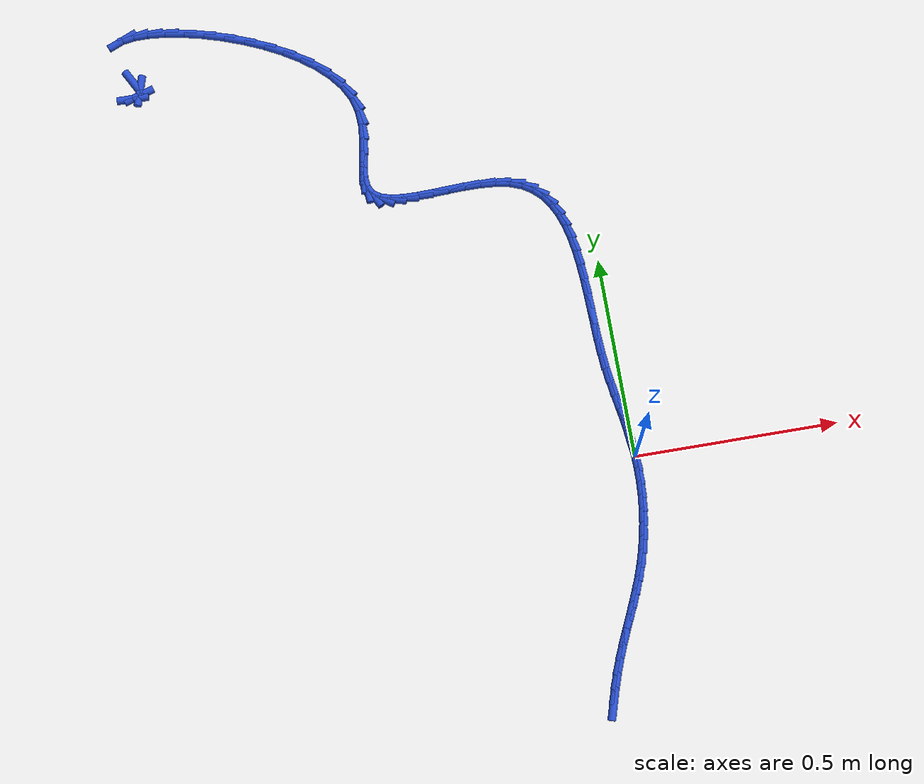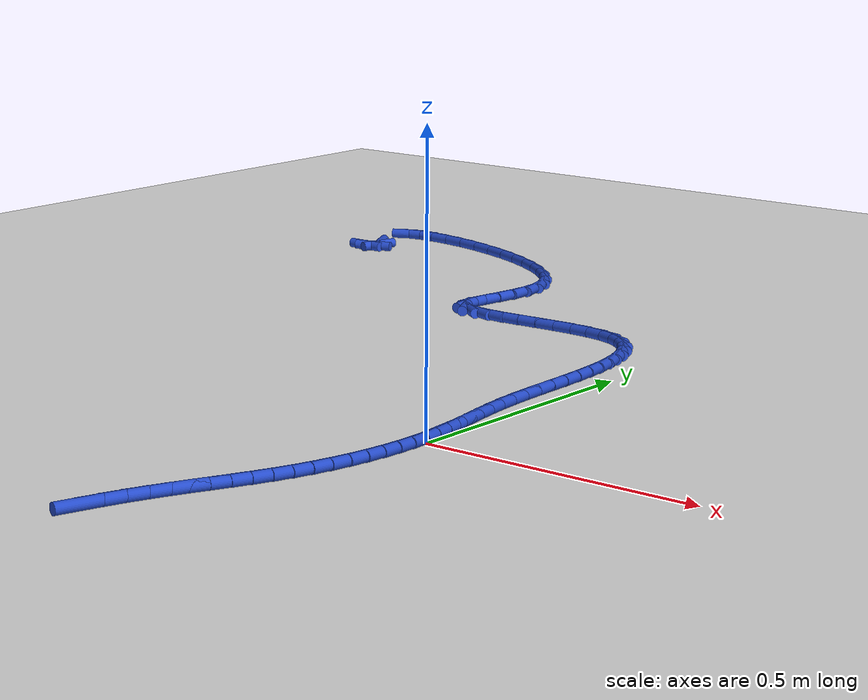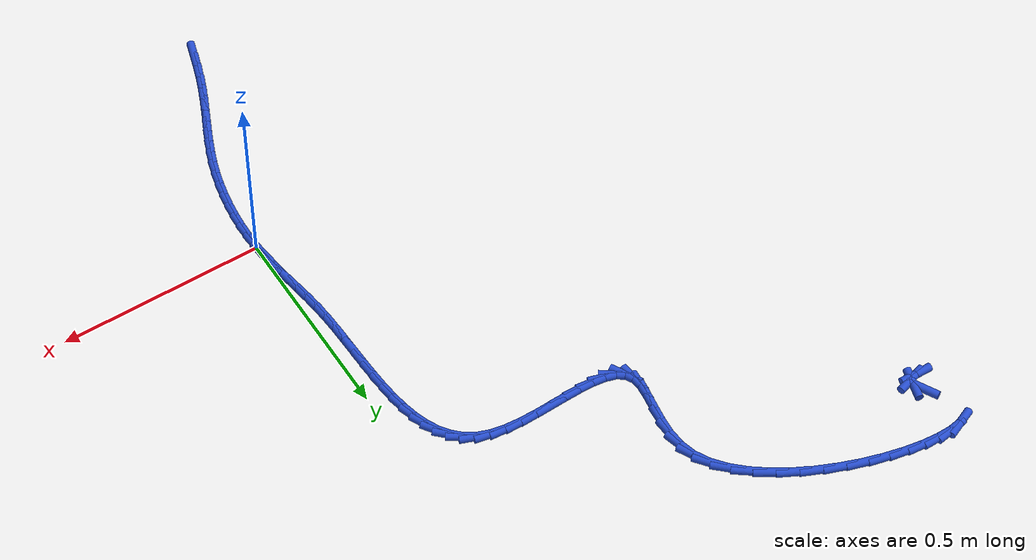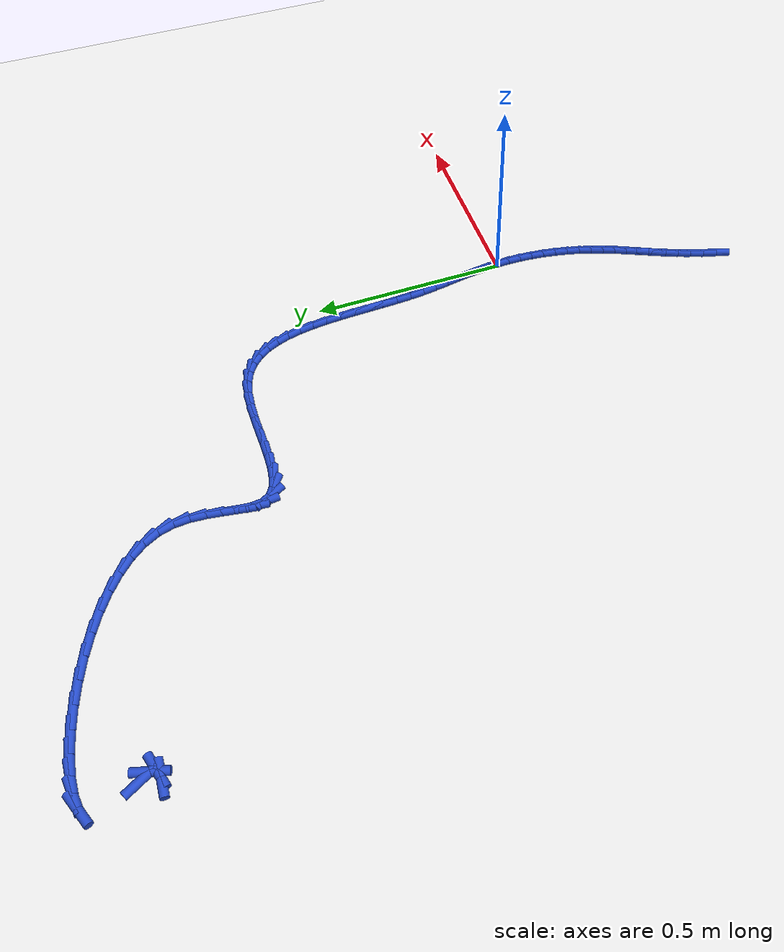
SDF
<sdf version="1.6">
 <world name="default">
  <model name="ground_plane">
   <static>1</static>
   <link name="link">
    <collision name="collision">
     <geometry><plane><normal>0 0 1</normal><size>100 100</size></plane></geometry>
     <surface><friction><ode><mu>100</mu><mu2>50</mu2></ode></friction></surface>
    </collision>
    <visual name="visual">
     <cast_shadows>0</cast_shadows>
     <geometry><plane><normal>0 0 1</normal><size>100 100</size></plane></geometry>
     <material>
      <script><uri>file://media/materials/scripts/gazebo.material</uri><name>Gazebo/WhiteGlow</name></script>
     </material>
    </visual>
   </link>
  </model>
  <model name="line">
   <link name="link_0">
    <pose>3.122502256758253e-17 0.0 0.01 0 1.57 -1.4923464075122743</pose>
    <collision name="collision">
     <geometry><cylinder><radius>0.01</radius><length>0.08</length></cylinder></geometry>
    </collision>
    <visual name="visual">
     <material>
      <script><name>Gazebo/Blue</name><uri>file://media/materials/scripts/gazebo.material</uri></script>
     </material>
     <geometry><cylinder><radius>0.01</radius><length>0.08</length></cylinder></geometry>
    </visual>
   </link>
   <link name="link_1">
    <pose>-0.0025242396400565912 0.03211041072144942 0.01 0 1.57 -1.4527249060750735</pose>
    <collision name="collision">
     <geometry><cylinder><radius>0.01</radius><length>0.08</length></cylinder></geometry>
    </collision>
    <visual name="visual">
     <material>
      <script><name>Gazebo/Blue</name><uri>file://media/materials/scripts/gazebo.material</uri></script>
     </material>
     <geometry><cylinder><radius>0.01</radius><length>0.08</length></cylinder></geometry>
    </visual>
   </link>
   <link name="link_2">
    <pose>-0.006291301379598806 0.06386695320340485 0.01 0 1.57 -1.425345209518804</pose>
    <collision name="collision">
     <geometry><cylinder><radius>0.01</radius><length>0.08</length></cylinder></geometry>
    </collision>
    <visual name="visual">
     <material>
      <script><name>Gazebo/Blue</name><uri>file://media/materials/scripts/gazebo.material</uri></script>
     </material>
     <geometry><cylinder><radius>0.01</radius><length>0.08</length></cylinder></geometry>
    </visual>
   </link>
   <link name="link_3">
    <pose>-0.010934447581198268 0.09556390062866021 0.01 0 1.57 -1.4108151127169857</pose>
    <collision name="collision">
     <geometry><cylinder><radius>0.01</radius><length>0.08</length></cylinder></geometry>
    </collision>
    <visual name="visual">
     <material>
      <script><name>Gazebo/Blue</name><uri>file://media/materials/scripts/gazebo.material</uri></script>
     </material>
     <geometry><cylinder><radius>0.01</radius><length>0.08</length></cylinder></geometry>
    </visual>
   </link>
   <link name="link_4">
    <pose>-0.016086940607426627 0.12749552618000934 0.01 0 1.57 -1.4090964437358047</pose>
    <collision name="collision">
     <geometry><cylinder><radius>0.01</radius><length>0.08</length></cylinder></geometry>
    </collision>
    <visual name="visual">
     <material>
      <script><name>Gazebo/Blue</name><uri>file://media/materials/scripts/gazebo.material</uri></script>
     </material>
     <geometry><cylinder><radius>0.01</radius><length>0.08</length></cylinder></geometry>
    </visual>
   </link>
   <link name="link_5">
    <pose>-0.021382042820855526 0.15995610304024607 0.01 0 1.57 -1.419603406813865</pose>
    <collision name="collision">
     <geometry><cylinder><radius>0.01</radius><length>0.08</length></cylinder></geometry>
    </collision>
    <visual name="visual">
     <material>
      <script><name>Gazebo/Blue</name><uri>file://media/materials/scripts/gazebo.material</uri></script>
     </material>
     <geometry><cylinder><radius>0.01</radius><length>0.08</length></cylinder></geometry>
    </visual>
   </link>
   <link name="link_6">
    <pose>-0.026453016584056632 0.19323990439216446 0.01 0 1.57 -1.4412943942337055</pose>
    <collision name="collision">
     <geometry><cylinder><radius>0.01</radius><length>0.08</length></cylinder></geometry>
    </collision>
    <visual name="visual">
     <material>
      <script><name>Gazebo/Blue</name><uri>file://media/materials/scripts/gazebo.material</uri></script>
     </material>
     <geometry><cylinder><radius>0.01</radius><length>0.08</length></cylinder></geometry>
    </visual>
   </link>
   <link name="link_7">
    <pose>-0.030933124259601576 0.22764120341855817 0.01 0 1.57 -1.4727454228640458</pose>
    <collision name="collision">
     <geometry><cylinder><radius>0.01</radius><length>0.08</length></cylinder></geometry>
    </collision>
    <visual name="visual">
     <material>
      <script><name>Gazebo/Blue</name><uri>file://media/materials/scripts/gazebo.material</uri></script>
     </material>
     <geometry><cylinder><radius>0.01</radius><length>0.08</length></cylinder></geometry>
    </visual>
   </link>
   <link name="link_8">
    <pose>-0.0344558992944999 0.2634540144774848 0.01 0 1.57 -1.5069412213120024</pose>
    <collision name="collision">
     <geometry><cylinder><radius>0.01</radius><length>0.08</length></cylinder></geometry>
    </collision>
    <visual name="visual">
     <material>
      <script><name>Gazebo/Blue</name><uri>file://media/materials/scripts/gazebo.material</uri></script>
     </material>
     <geometry><cylinder><radius>0.01</radius><length>0.08</length></cylinder></geometry>
    </visual>
   </link>
   <link name="link_9">
    <pose>-0.03684338935002123 0.30079236320398184 0.01 0 1.57 -1.5294482146225858</pose>
    <collision name="collision">
     <geometry><cylinder><radius>0.01</radius><length>0.08</length></cylinder></geometry>
    </collision>
    <visual name="visual">
     <material>
      <script><name>Gazebo/Blue</name><uri>file://media/materials/scripts/gazebo.material</uri></script>
     </material>
     <geometry><cylinder><radius>0.01</radius><length>0.08</length></cylinder></geometry>
    </visual>
   </link>
   <link name="link_10">
    <pose>-0.03843551519082392 0.33927582276470847 0.01 0 1.57 -1.539532102239141</pose>
    <collision name="collision">
     <geometry><cylinder><radius>0.01</radius><length>0.08</length></cylinder></geometry>
    </collision>
    <visual name="visual">
     <material>
      <script><name>Gazebo/Blue</name><uri>file://media/materials/scripts/gazebo.material</uri></script>
     </material>
     <geometry><cylinder><radius>0.01</radius><length>0.08</length></cylinder></geometry>
    </visual>
   </link>
   <link name="link_11">
    <pose>-0.03966034580949153 0.3784398045720334 0.01 0 1.57 -1.5381617224673751</pose>
    <collision name="collision">
     <geometry><cylinder><radius>0.01</radius><length>0.08</length></cylinder></geometry>
    </collision>
    <visual name="visual">
     <material>
      <script><name>Gazebo/Blue</name><uri>file://media/materials/scripts/gazebo.material</uri></script>
     </material>
     <geometry><cylinder><radius>0.01</radius><length>0.08</length></cylinder></geometry>
    </visual>
   </link>
   <link name="link_12">
    <pose>-0.04094595019860771 0.4178197200383258 0.01 0 1.57 -1.525481343751991</pose>
    <collision name="collision">
     <geometry><cylinder><radius>0.01</radius><length>0.08</length></cylinder></geometry>
    </collision>
    <visual name="visual">
     <material>
      <script><name>Gazebo/Blue</name><uri>file://media/materials/scripts/gazebo.material</uri></script>
     </material>
     <geometry><cylinder><radius>0.01</radius><length>0.08</length></cylinder></geometry>
    </visual>
   </link>
   <link name="link_13">
    <pose>-0.04272039735075603 0.4569509805759544 0.01 0 1.57 -1.5008559892053672</pose>
    <collision name="collision">
     <geometry><cylinder><radius>0.01</radius><length>0.08</length></cylinder></geometry>
    </collision>
    <visual name="visual">
     <material>
      <script><name>Gazebo/Blue</name><uri>file://media/materials/scripts/gazebo.material</uri></script>
     </material>
     <geometry><cylinder><radius>0.01</radius><length>0.08</length></cylinder></geometry>
    </visual>
   </link>
   <link name="link_14">
    <pose>-0.04541175625852012 0.49536899759728836 0.01 0 1.57 -1.4628311197172172</pose>
    <collision name="collision">
     <geometry><cylinder><radius>0.01</radius><length>0.08</length></cylinder></geometry>
    </collision>
    <visual name="visual">
     <material>
      <script><name>Gazebo/Blue</name><uri>file://media/materials/scripts/gazebo.material</uri></script>
     </material>
     <geometry><cylinder><radius>0.01</radius><length>0.08</length></cylinder></geometry>
    </visual>
   </link>
   <link name="link_15">
    <pose>-0.0494480959144836 0.5326091825146966 0.01 0 1.57 -1.4090270414760842</pose>
    <collision name="collision">
     <geometry><cylinder><radius>0.01</radius><length>0.08</length></cylinder></geometry>
    </collision>
    <visual name="visual">
     <material>
      <script><name>Gazebo/Blue</name><uri>file://media/materials/scripts/gazebo.material</uri></script>
     </material>
     <geometry><cylinder><radius>0.01</radius><length>0.08</length></cylinder></geometry>
    </visual>
   </link>
   <link name="link_16">
    <pose>-0.05525748531123002 0.5682069467405477 0.01 0 1.57 -1.336021482420716</pose>
    <collision name="collision">
     <geometry><cylinder><radius>0.01</radius><length>0.08</length></cylinder></geometry>
    </collision>
    <visual name="visual">
     <material>
      <script><name>Gazebo/Blue</name><uri>file://media/materials/scripts/gazebo.material</uri></script>
     </material>
     <geometry><cylinder><radius>0.01</radius><length>0.08</length></cylinder></geometry>
    </visual>
   </link>
   <link name="link_17">
    <pose>-0.06326799344134307 0.6016977016872112 0.01 0 1.57 -1.2393753012844513</pose>
    <collision name="collision">
     <geometry><cylinder><radius>0.01</radius><length>0.08</length></cylinder></geometry>
    </collision>
    <visual name="visual">
     <material>
      <script><name>Gazebo/Blue</name><uri>file://media/materials/scripts/gazebo.material</uri></script>
     </material>
     <geometry><cylinder><radius>0.01</radius><length>0.08</length></cylinder></geometry>
    </visual>
   </link>
   <link name="link_18">
    <pose>-0.07390768929740628 0.6326168587670558 0.01 0 1.57 -1.1141892738138877</pose>
    <collision name="collision">
     <geometry><cylinder><radius>0.01</radius><length>0.08</length></cylinder></geometry>
    </collision>
    <visual name="visual">
     <material>
      <script><name>Gazebo/Blue</name><uri>file://media/materials/scripts/gazebo.material</uri></script>
     </material>
     <geometry><cylinder><radius>0.01</radius><length>0.08</length></cylinder></geometry>
    </visual>
   </link>
   <link name="link_19">
    <pose>-0.08760464187200327 0.6604998293924501 0.01 0 1.57 -0.956918984813352</pose>
    <collision name="collision">
     <geometry><cylinder><radius>0.01</radius><length>0.08</length></cylinder></geometry>
    </collision>
    <visual name="visual">
     <material>
      <script><name>Gazebo/Blue</name><uri>file://media/materials/scripts/gazebo.material</uri></script>
     </material>
     <geometry><cylinder><radius>0.01</radius><length>0.08</length></cylinder></geometry>
    </visual>
   </link>
   <link name="link_20">
    <pose>-0.10478692015771768 0.6848820249757636 0.01 0 1.57 -0.7690469329252106</pose>
    <collision name="collision">
     <geometry><cylinder><radius>0.01</radius><length>0.08</length></cylinder></geometry>
    </collision>
    <visual name="visual">
     <material>
      <script><name>Gazebo/Blue</name><uri>file://media/materials/scripts/gazebo.material</uri></script>
     </material>
     <geometry><cylinder><radius>0.01</radius><length>0.08</length></cylinder></geometry>
    </visual>
   </link>
   <link name="link_21">
    <pose>-0.1258825931471331 0.7052988569293648 0.01 0 1.57 -0.5611020470445771</pose>
    <collision name="collision">
     <geometry><cylinder><radius>0.01</radius><length>0.08</length></cylinder></geometry>
    </collision>
    <visual name="visual">
     <material>
      <script><name>Gazebo/Blue</name><uri>file://media/materials/scripts/gazebo.material</uri></script>
     </material>
     <geometry><cylinder><radius>0.01</radius><length>0.08</length></cylinder></geometry>
    </visual>
   </link>
   <link name="link_22">
    <pose>-0.15131972983283312 0.721285736665623 0.01 0 1.57 -0.35248358245858363</pose>
    <collision name="collision">
     <geometry><cylinder><radius>0.01</radius><length>0.08</length></cylinder></geometry>
    </collision>
    <visual name="visual">
     <material>
      <script><name>Gazebo/Blue</name><uri>file://media/materials/scripts/gazebo.material</uri></script>
     </material>
     <geometry><cylinder><radius>0.01</radius><length>0.08</length></cylinder></geometry>
    </visual>
   </link>
   <link name="link_23">
    <pose>-0.18151154100221772 0.7323916604707373 0.01 0 1.57 -0.18228051396166303</pose>
    <collision name="collision">
     <geometry><cylinder><radius>0.01</radius><length>0.08</length></cylinder></geometry>
    </collision>
    <visual name="visual">
     <material>
      <script><name>Gazebo/Blue</name><uri>file://media/materials/scripts/gazebo.material</uri></script>
     </material>
     <geometry><cylinder><radius>0.01</radius><length>0.08</length></cylinder></geometry>
    </visual>
   </link>
   <link name="link_24">
    <pose>-0.21619424163523424 0.7387846026645604 0.01 0 1.57 -0.07122660608630609</pose>
    <collision name="collision">
     <geometry><cylinder><radius>0.01</radius><length>0.08</length></cylinder></geometry>
    </collision>
    <visual name="visual">
     <material>
      <script><name>Gazebo/Blue</name><uri>file://media/materials/scripts/gazebo.material</uri></script>
     </material>
     <geometry><cylinder><radius>0.01</radius><length>0.08</length></cylinder></geometry>
    </visual>
   </link>
   <link name="link_25">
    <pose>-0.2541623573352507 0.7414935252306911 0.01 0 1.57 -0.002939330916850914</pose>
    <collision name="collision">
     <geometry><cylinder><radius>0.01</radius><length>0.08</length></cylinder></geometry>
    </collision>
    <visual name="visual">
     <material>
      <script><name>Gazebo/Blue</name><uri>file://media/materials/scripts/gazebo.material</uri></script>
     </material>
     <geometry><cylinder><radius>0.01</radius><length>0.08</length></cylinder></geometry>
    </visual>
   </link>
   <link name="link_26">
    <pose>-0.2941408028356902 0.7416110354499748 0.01 0 1.57 0.033914028286608056</pose>
    <collision name="collision">
     <geometry><cylinder><radius>0.01</radius><length>0.08</length></cylinder></geometry>
    </collision>
    <visual name="visual">
     <material>
      <script><name>Gazebo/Blue</name><uri>file://media/materials/scripts/gazebo.material</uri></script>
     </material>
     <geometry><cylinder><radius>0.01</radius><length>0.08</length></cylinder></geometry>
    </visual>
   </link>
   <link name="link_27">
    <pose>-0.3348544928699761 0.740229740603257 0.01 0 1.57 0.04446460793757391</pose>
    <collision name="collision">
     <geometry><cylinder><radius>0.01</radius><length>0.08</length></cylinder></geometry>
    </collision>
    <visual name="visual">
     <material>
      <script><name>Gazebo/Blue</name><uri>file://media/materials/scripts/gazebo.material</uri></script>
     </material>
     <geometry><cylinder><radius>0.01</radius><length>0.08</length></cylinder></geometry>
    </visual>
   </link>
   <link name="link_28">
    <pose>-0.37502834217153114 0.7384422479713829 0.01 0 1.57 0.02869686565206392</pose>
    <collision name="collision">
     <geometry><cylinder><radius>0.01</radius><length>0.08</length></cylinder></geometry>
    </collision>
    <visual name="visual">
     <material>
      <script><name>Gazebo/Blue</name><uri>file://media/materials/scripts/gazebo.material</uri></script>
     </material>
     <geometry><cylinder><radius>0.01</radius><length>0.08</length></cylinder></geometry>
    </visual>
   </link>
   <link name="link_29">
    <pose>-0.4133872654737788 0.7373411648351982 0.01 0 1.57 -0.019219480430270774</pose>
    <collision name="collision">
     <geometry><cylinder><radius>0.01</radius><length>0.08</length></cylinder></geometry>
    </collision>
    <visual name="visual">
     <material>
      <script><name>Gazebo/Blue</name><uri>file://media/materials/scripts/gazebo.material</uri></script>
     </material>
     <geometry><cylinder><radius>0.01</radius><length>0.08</length></cylinder></geometry>
    </visual>
   </link>
   <link name="link_30">
    <pose>-0.4486561775101417 0.7380190984755476 0.01 0 1.57 -0.11435710970234506</pose>
    <collision name="collision">
     <geometry><cylinder><radius>0.01</radius><length>0.08</length></cylinder></geometry>
    </collision>
    <visual name="visual">
     <material>
      <script><name>Gazebo/Blue</name><uri>file://media/materials/scripts/gazebo.material</uri></script>
     </material>
     <geometry><cylinder><radius>0.01</radius><length>0.08</length></cylinder></geometry>
    </visual>
   </link>
   <link name="link_31">
    <pose>-0.4795599930140432 0.7415686561732768 0.01 0 1.57 -0.28908374782690727</pose>
    <collision name="collision">
     <geometry><cylinder><radius>0.01</radius><length>0.08</length></cylinder></geometry>
    </collision>
    <visual name="visual">
     <material>
      <script><name>Gazebo/Blue</name><uri>file://media/materials/scripts/gazebo.material</uri></script>
     </material>
     <geometry><cylinder><radius>0.01</radius><length>0.08</length></cylinder></geometry>
    </visual>
   </link>
   <link name="link_32">
    <pose>-0.5048236267189065 0.7490824452092313 0.01 0 1.57 -0.600661807914167</pose>
    <collision name="collision">
     <geometry><cylinder><radius>0.01</radius><length>0.08</length></cylinder></geometry>
    </collision>
    <visual name="visual">
     <material>
      <script><name>Gazebo/Blue</name><uri>file://media/materials/scripts/gazebo.material</uri></script>
     </material>
     <geometry><cylinder><radius>0.01</radius><length>0.08</length></cylinder></geometry>
    </visual>
   </link>
   <link name="link_33">
    <pose>-0.5231719933581545 0.7616530728642563 0.01 0 1.57 -1.0708802898240515</pose>
    <collision name="collision">
     <geometry><cylinder><radius>0.01</radius><length>0.08</length></cylinder></geometry>
    </collision>
    <visual name="visual">
     <material>
      <script><name>Gazebo/Blue</name><uri>file://media/materials/scripts/gazebo.material</uri></script>
     </material>
     <geometry><cylinder><radius>0.01</radius><length>0.08</length></cylinder></geometry>
    </visual>
   </link>
   <link name="link_34">
    <pose>-0.5333804208115077 0.7803432036538778 0.01 0 1.57 -1.4700803531865658</pose>
    <collision name="collision">
     <geometry><cylinder><radius>0.01</radius><length>0.08</length></cylinder></geometry>
    </collision>
    <visual name="visual">
     <material>
      <script><name>Gazebo/Blue</name><uri>file://media/materials/scripts/gazebo.material</uri></script>
     </material>
     <geometry><cylinder><radius>0.01</radius><length>0.08</length></cylinder></geometry>
    </visual>
   </link>
   <link name="link_35">
    <pose>-0.5358947516386539 0.8052233039727204 0.01 0 1.57 1.4802786324896795</pose>
    <collision name="collision">
     <geometry><cylinder><radius>0.01</radius><length>0.08</length></cylinder></geometry>
    </collision>
    <visual name="visual">
     <material>
      <script><name>Gazebo/Blue</name><uri>file://media/materials/scripts/gazebo.material</uri></script>
     </material>
     <geometry><cylinder><radius>0.01</radius><length>0.08</length></cylinder></geometry>
    </visual>
   </link>
   <link name="link_36">
    <pose>-0.5331769474389734 0.8351663712277464 0.01 0 1.57 1.413339230249264</pose>
    <collision name="collision">
     <geometry><cylinder><radius>0.01</radius><length>0.08</length></cylinder></geometry>
    </collision>
    <visual name="visual">
     <material>
      <script><name>Gazebo/Blue</name><uri>file://media/materials/scripts/gazebo.material</uri></script>
     </material>
     <geometry><cylinder><radius>0.01</radius><length>0.08</length></cylinder></geometry>
    </visual>
   </link>
   <link name="link_37">
    <pose>-0.5278092709081046 0.8689739502831298 0.01 0 1.57 1.4228653549968964</pose>
    <collision name="collision">
     <geometry><cylinder><radius>0.01</radius><length>0.08</length></cylinder></geometry>
    </collision>
    <visual name="visual">
     <material>
      <script><name>Gazebo/Blue</name><uri>file://media/materials/scripts/gazebo.material</uri></script>
     </material>
     <geometry><cylinder><radius>0.01</radius><length>0.08</length></cylinder></geometry>
    </visual>
   </link>
   <link name="link_38">
    <pose>-0.5223739847416864 0.9054475860030436 0.01 0 1.57 1.493970031074479</pose>
    <collision name="collision">
     <geometry><cylinder><radius>0.01</radius><length>0.08</length></cylinder></geometry>
    </collision>
    <visual name="visual">
     <material>
      <script><name>Gazebo/Blue</name><uri>file://media/materials/scripts/gazebo.material</uri></script>
     </material>
     <geometry><cylinder><radius>0.01</radius><length>0.08</length></cylinder></geometry>
    </visual>
   </link>
   <link name="link_39">
    <pose>-0.5194533516353569 0.9433888232516626 0.01 0 1.57 -1.513902524757434</pose>
    <collision name="collision">
     <geometry><cylinder><radius>0.01</radius><length>0.08</length></cylinder></geometry>
    </collision>
    <visual name="visual">
     <material>
      <script><name>Gazebo/Blue</name><uri>file://media/materials/scripts/gazebo.material</uri></script>
     </material>
     <geometry><cylinder><radius>0.01</radius><length>0.08</length></cylinder></geometry>
    </visual>
   </link>
   <link name="link_40">
    <pose>-0.5216296342847545 0.9815992068931589 0.01 0 1.57 -1.312798483066644</pose>
    <collision name="collision">
     <geometry><cylinder><radius>0.01</radius><length>0.08</length></cylinder></geometry>
    </collision>
    <visual name="visual">
     <material>
      <script><name>Gazebo/Blue</name><uri>file://media/materials/scripts/gazebo.material</uri></script>
     </material>
     <geometry><cylinder><radius>0.01</radius><length>0.08</length></cylinder></geometry>
    </visual>
   </link>
   <link name="link_41">
    <pose>-0.5314684991429615 1.0188847467095898 0.01 0 1.57 -1.0849188378656638</pose>
    <collision name="collision">
     <geometry><cylinder><radius>0.01</radius><length>0.08</length></cylinder></geometry>
    </collision>
    <visual name="visual">
     <material>
      <script><name>Gazebo/Blue</name><uri>file://media/materials/scripts/gazebo.material</uri></script>
     </material>
     <geometry><cylinder><radius>0.01</radius><length>0.08</length></cylinder></geometry>
    </visual>
   </link>
   <link name="link_42">
    <pose>-0.5502262236348582 1.054403719839127 0.01 0 1.57 -0.8980681484589687</pose>
    <collision name="collision">
     <geometry><cylinder><radius>0.01</radius><length>0.08</length></cylinder></geometry>
    </collision>
    <visual name="visual">
     <material>
      <script><name>Gazebo/Blue</name><uri>file://media/materials/scripts/gazebo.material</uri></script>
     </material>
     <geometry><cylinder><radius>0.01</radius><length>0.08</length></cylinder></geometry>
    </visual>
   </link>
   <link name="link_43">
    <pose>-0.5769251320058825 1.0879154079825784 0.01 0 1.57 -0.7526490560378257</pose>
    <collision name="collision">
     <geometry><cylinder><radius>0.01</radius><length>0.08</length></cylinder></geometry>
    </collision>
    <visual name="visual">
     <material>
      <script><name>Gazebo/Blue</name><uri>file://media/materials/scripts/gazebo.material</uri></script>
     </material>
     <geometry><cylinder><radius>0.01</radius><length>0.08</length></cylinder></geometry>
    </visual>
   </link>
   <link name="link_44">
    <pose>-0.6103693309822446 1.1192378003042316 0.01 0 1.57 -0.6386563676755015</pose>
    <collision name="collision">
     <geometry><cylinder><radius>0.01</radius><length>0.08</length></cylinder></geometry>
    </collision>
    <visual name="visual">
     <material>
      <script><name>Gazebo/Blue</name><uri>file://media/materials/scripts/gazebo.material</uri></script>
     </material>
     <geometry><cylinder><radius>0.01</radius><length>0.08</length></cylinder></geometry>
    </visual>
   </link>
   <link name="link_45">
    <pose>-0.6493629272901551 1.148188885968375 0.01 0 1.57 -0.5470005143522644</pose>
    <collision name="collision">
     <geometry><cylinder><radius>0.01</radius><length>0.08</length></cylinder></geometry>
    </collision>
    <visual name="visual">
     <material>
      <script><name>Gazebo/Blue</name><uri>file://media/materials/scripts/gazebo.material</uri></script>
     </material>
     <geometry><cylinder><radius>0.01</radius><length>0.08</length></cylinder></geometry>
    </visual>
   </link>
   <link name="link_46">
    <pose>-0.6927100276558247 1.1745866541392977 0.01 0 1.57 -0.4706771961666823</pose>
    <collision name="collision">
     <geometry><cylinder><radius>0.01</radius><length>0.08</length></cylinder></geometry>
    </collision>
    <visual name="visual">
     <material>
      <script><name>Gazebo/Blue</name><uri>file://media/materials/scripts/gazebo.material</uri></script>
     </material>
     <geometry><cylinder><radius>0.01</radius><length>0.08</length></cylinder></geometry>
    </visual>
   </link>
   <link name="link_47">
    <pose>-0.7392147388054642 1.1982490939812878 0.01 0 1.57 -0.4044345482107053</pose>
    <collision name="collision">
     <geometry><cylinder><radius>0.01</radius><length>0.08</length></cylinder></geometry>
    </collision>
    <visual name="visual">
     <material>
      <script><name>Gazebo/Blue</name><uri>file://media/materials/scripts/gazebo.material</uri></script>
     </material>
     <geometry><cylinder><radius>0.01</radius><length>0.08</length></cylinder></geometry>
    </visual>
   </link>
   <link name="link_48">
    <pose>-0.7876811674652838 1.2189941946586333 0.01 0 1.57 -0.344154830333732</pose>
    <collision name="collision">
     <geometry><cylinder><radius>0.01</radius><length>0.08</length></cylinder></geometry>
    </collision>
    <visual name="visual">
     <material>
      <script><name>Gazebo/Blue</name><uri>file://media/materials/scripts/gazebo.material</uri></script>
     </material>
     <geometry><cylinder><radius>0.01</radius><length>0.08</length></cylinder></geometry>
    </visual>
   </link>
   <link name="link_49">
    <pose>-0.8369134203614942 1.2366399453356236 0.01 0 1.57 -0.28625523133374653</pose>
    <collision name="collision">
     <geometry><cylinder><radius>0.01</radius><length>0.08</length></cylinder></geometry>
    </collision>
    <visual name="visual">
     <material>
      <script><name>Gazebo/Blue</name><uri>file://media/materials/scripts/gazebo.material</uri></script>
     </material>
     <geometry><cylinder><radius>0.01</radius><length>0.08</length></cylinder></geometry>
    </visual>
   </link>
   <link name="link_50">
    <pose>-0.8857156042203059 1.251004335176546 0.01 0 1.57 -0.22708456521171863</pose>
    <collision name="collision">
     <geometry><cylinder><radius>0.01</radius><length>0.08</length></cylinder></geometry>
    </collision>
    <visual name="visual">
     <material>
      <script><name>Gazebo/Blue</name><uri>file://media/materials/scripts/gazebo.material</uri></script>
     </material>
     <geometry><cylinder><radius>0.01</radius><length>0.08</length></cylinder></geometry>
    </visual>
   </link>
   <link name="link_51">
    <pose>-0.9328918257679296 1.26190535334569 0.01 0 1.57 -0.1621471995024719</pose>
    <collision name="collision">
     <geometry><cylinder><radius>0.01</radius><length>0.08</length></cylinder></geometry>
    </collision>
    <visual name="visual">
     <material>
      <script><name>Gazebo/Blue</name><uri>file://media/materials/scripts/gazebo.material</uri></script>
     </material>
     <geometry><cylinder><radius>0.01</radius><length>0.08</length></cylinder></geometry>
    </visual>
   </link>
   <link name="link_52">
    <pose>-0.9772461917305759 1.2691609890073432 0.01 0 1.57 -0.08478706417523625</pose>
    <collision name="collision">
     <geometry><cylinder><radius>0.01</radius><length>0.08</length></cylinder></geometry>
    </collision>
    <visual name="visual">
     <material>
      <script><name>Gazebo/Blue</name><uri>file://media/materials/scripts/gazebo.material</uri></script>
     </material>
     <geometry><cylinder><radius>0.01</radius><length>0.08</length></cylinder></geometry>
    </visual>
   </link>
   <link name="link_53">
    <pose>-1.0175828088344554 1.2725892313257945 0.01 0 1.57 0.01654497751420317</pose>
    <collision name="collision">
     <geometry><cylinder><radius>0.01</radius><length>0.08</length></cylinder></geometry>
    </collision>
    <visual name="visual">
     <material>
      <script><name>Gazebo/Blue</name><uri>file://media/materials/scripts/gazebo.material</uri></script>
     </material>
     <geometry><cylinder><radius>0.01</radius><length>0.08</length></cylinder></geometry>
    </visual>
   </link>
   <link name="link_54">
    <pose>-1.0527057838057785 1.2720080694653322 0.01 0 1.57 0.16470825440545375</pose>
    <collision name="collision">
     <geometry><cylinder><radius>0.01</radius><length>0.08</length></cylinder></geometry>
    </collision>
    <visual name="visual">
     <material>
      <script><name>Gazebo/Blue</name><uri>file://media/materials/scripts/gazebo.material</uri></script>
     </material>
     <geometry><cylinder><radius>0.01</radius><length>0.08</length></cylinder></geometry>
    </visual>
   </link>
   <link name="link_55">
    <pose>-1.0814192233707556 1.2672354925902447 0.01 0 1.57 0.4088758405011477</pose>
    <collision name="collision">
     <geometry><cylinder><radius>0.01</radius><length>0.08</length></cylinder></geometry>
    </collision>
    <visual name="visual">
     <material>
      <script><name>Gazebo/Blue</name><uri>file://media/materials/scripts/gazebo.material</uri></script>
     </material>
     <geometry><cylinder><radius>0.01</radius><length>0.08</length></cylinder></geometry>
    </visual>
   </link>
   <link name="link_61">
    <pose>-1.0672579071118968 1.1475832692138281 0.01 0 1.57 -1.0780925915806356</pose>
    <collision name="collision">
     <geometry><cylinder><radius>0.01</radius><length>0.08</length></cylinder></geometry>
    </collision>
    <visual name="visual">
     <material>
      <script><name>Gazebo/Blue</name><uri>file://media/materials/scripts/gazebo.material</uri></script>
     </material>
     <geometry><cylinder><radius>0.01</radius><length>0.08</length></cylinder></geometry>
    </visual>
   </link>
   <link name="link_62">
    <pose>-1.0559970106703855 1.1266080281186397 0.01 0 1.57 1.2945069952393078</pose>
    <collision name="collision">
     <geometry><cylinder><radius>0.01</radius><length>0.08</length></cylinder></geometry>
    </collision>
    <visual name="visual">
     <material>
      <script><name>Gazebo/Blue</name><uri>file://media/materials/scripts/gazebo.material</uri></script>
     </material>
     <geometry><cylinder><radius>0.01</radius><length>0.08</length></cylinder></geometry>
    </visual>
   </link>
   <link name="link_63">
    <pose>-1.0595266218368762 1.1141597050144265 0.01 0 1.57 0.3115966419591782</pose>
    <collision name="collision">
     <geometry><cylinder><radius>0.01</radius><length>0.08</length></cylinder></geometry>
    </collision>
    <visual name="visual">
     <material>
      <script><name>Gazebo/Blue</name><uri>file://media/materials/scripts/gazebo.material</uri></script>
     </material>
     <geometry><cylinder><radius>0.01</radius><length>0.08</length></cylinder></geometry>
    </visual>
   </link>
   <link name="link_64">
    <pose>-1.0759286762650775 1.108876785668117 0.01 0 1.57 -0.014079511973966095</pose>
    <collision name="collision">
     <geometry><cylinder><radius>0.01</radius><length>0.08</length></cylinder></geometry>
    </collision>
    <visual name="visual">
     <material>
      <script><name>Gazebo/Blue</name><uri>file://media/materials/scripts/gazebo.material</uri></script>
     </material>
     <geometry><cylinder><radius>0.01</radius><length>0.08</length></cylinder></geometry>
    </visual>
   </link>
   <link name="link_222">
    <pose>-0.15894593888685743 -0.5770699187652248 0.01 0 1.57 1.2744878338771262</pose>
    <collision name="collision">
     <geometry><cylinder><radius>0.01</radius><length>0.08</length></cylinder></geometry>
    </collision>
    <visual name="visual">
     <material>
      <script><name>Gazebo/Blue</name><uri>file://media/materials/scripts/gazebo.material</uri></script>
     </material>
     <geometry><cylinder><radius>0.01</radius><length>0.08</length></cylinder></geometry>
    </visual>
   </link>
   <link name="link_223">
    <pose>-0.1483175508162188 -0.542256542431307 0.01 0 1.57 1.2478589357175636</pose>
    <collision name="collision">
     <geometry><cylinder><radius>0.01</radius><length>0.08</length></cylinder></geometry>
    </collision>
    <visual name="visual">
     <material>
      <script><name>Gazebo/Blue</name><uri>file://media/materials/scripts/gazebo.material</uri></script>
     </material>
     <geometry><cylinder><radius>0.01</radius><length>0.08</length></cylinder></geometry>
    </visual>
   </link>
   <link name="link_224">
    <pose>-0.13698938663754354 -0.5084060197648392 0.01 0 1.57 1.2125334922706383</pose>
    <collision name="collision">
     <geometry><cylinder><radius>0.01</radius><length>0.08</length></cylinder></geometry>
    </collision>
    <visual name="visual">
     <material>
      <script><name>Gazebo/Blue</name><uri>file://media/materials/scripts/gazebo.material</uri></script>
     </material>
     <geometry><cylinder><radius>0.01</radius><length>0.08</length></cylinder></geometry>
    </visual>
   </link>
   <link name="link_225">
    <pose>-0.12477294207488121 -0.4757784451162406 0.01 0 1.57 1.1802959078383208</pose>
    <collision name="collision">
     <geometry><cylinder><radius>0.01</radius><length>0.08</length></cylinder></geometry>
    </collision>
    <visual name="visual">
     <material>
      <script><name>Gazebo/Blue</name><uri>file://media/materials/scripts/gazebo.material</uri></script>
     </material>
     <geometry><cylinder><radius>0.01</radius><length>0.08</length></cylinder></geometry>
    </visual>
   </link>
   <link name="link_226">
    <pose>-0.11180477382164629 -0.44427478174659923 0.01 0 1.57 1.1584431237454822</pose>
    <collision name="collision">
     <geometry><cylinder><radius>0.01</radius><length>0.08</length></cylinder></geometry>
    </collision>
    <visual name="visual">
     <material>
      <script><name>Gazebo/Blue</name><uri>file://media/materials/scripts/gazebo.material</uri></script>
     </material>
     <geometry><cylinder><radius>0.01</radius><length>0.08</length></cylinder></geometry>
    </visual>
   </link>
   <link name="link_227">
    <pose>-0.09839062012904015 -0.4136090791904446 0.01 0 1.57 1.147913024354366</pose>
    <collision name="collision">
     <geometry><cylinder><radius>0.01</radius><length>0.08</length></cylinder></geometry>
    </collision>
    <visual name="visual">
     <material>
      <script><name>Gazebo/Blue</name><uri>file://media/materials/scripts/gazebo.material</uri></script>
     </material>
     <geometry><cylinder><radius>0.01</radius><length>0.08</length></cylinder></geometry>
    </visual>
   </link>
   <link name="link_228">
    <pose>-0.08483767236106421 -0.3834937815666081 0.01 0 1.57 1.1493096667035059</pose>
    <collision name="collision">
     <geometry><cylinder><radius>0.01</radius><length>0.08</length></cylinder></geometry>
    </collision>
    <visual name="visual">
     <material>
      <script><name>Gazebo/Blue</name><uri>file://media/materials/scripts/gazebo.material</uri></script>
     </material>
     <geometry><cylinder><radius>0.01</radius><length>0.08</length></cylinder></geometry>
    </visual>
   </link>
   <link name="link_229">
    <pose>-0.07145312188171993 -0.35364133299392153 0.01 0 1.57 1.162954311007606</pose>
    <collision name="collision">
     <geometry><cylinder><radius>0.01</radius><length>0.08</length></cylinder></geometry>
    </collision>
    <visual name="visual">
     <material>
      <script><name>Gazebo/Blue</name><uri>file://media/materials/scripts/gazebo.material</uri></script>
     </material>
     <geometry><cylinder><radius>0.01</radius><length>0.08</length></cylinder></geometry>
    </visual>
   </link>
   <link name="link_230">
    <pose>-0.05854416005500844 -0.3237641775912159 0.01 0 1.57 1.1888511743745291</pose>
    <collision name="collision">
     <geometry><cylinder><radius>0.01</radius><length>0.08</length></cylinder></geometry>
    </collision>
    <visual name="visual">
     <material>
      <script><name>Gazebo/Blue</name><uri>file://media/materials/scripts/gazebo.material</uri></script>
     </material>
     <geometry><cylinder><radius>0.01</radius><length>0.08</length></cylinder></geometry>
    </visual>
   </link>
   <link name="link_231">
    <pose>-0.04641797824493195 -0.2935747594773247 0.01 0 1.57 1.2266191012824148</pose>
    <collision name="collision">
     <geometry><cylinder><radius>0.01</radius><length>0.08</length></cylinder></geometry>
    </collision>
    <visual name="visual">
     <material>
      <script><name>Gazebo/Blue</name><uri>file://media/materials/scripts/gazebo.material</uri></script>
     </material>
     <geometry><cylinder><radius>0.01</radius><length>0.08</length></cylinder></geometry>
    </visual>
   </link>
   <link name="link_232">
    <pose>-0.0353817678154915 -0.2627855227710784 0.01 0 1.57 1.2740127694428602</pose>
    <collision name="collision">
     <geometry><cylinder><radius>0.01</radius><length>0.08</length></cylinder></geometry>
    </collision>
    <visual name="visual">
     <material>
      <script><name>Gazebo/Blue</name><uri>file://media/materials/scripts/gazebo.material</uri></script>
     </material>
     <geometry><cylinder><radius>0.01</radius><length>0.08</length></cylinder></geometry>
    </visual>
   </link>
   <link name="link_233">
    <pose>-0.025711093577444444 -0.23116294769368198 0.01 0 1.57 1.3222625670220376</pose>
    <collision name="collision">
     <geometry><cylinder><radius>0.01</radius><length>0.08</length></cylinder></geometry>
    </collision>
    <visual name="visual">
     <material>
      <script><name>Gazebo/Blue</name><uri>file://media/materials/scripts/gazebo.material</uri></script>
     </material>
     <geometry><cylinder><radius>0.01</radius><length>0.08</length></cylinder></geometry>
    </visual>
   </link>
   <link name="link_234">
    <pose>-0.017495713528824255 -0.1987909779558454 0.01 0 1.57 1.368918881323251</pose>
    <collision name="collision">
     <geometry><cylinder><radius>0.01</radius><length>0.08</length></cylinder></geometry>
    </collision>
    <visual name="visual">
     <material>
      <script><name>Gazebo/Blue</name><uri>file://media/materials/scripts/gazebo.material</uri></script>
     </material>
     <geometry><cylinder><radius>0.01</radius><length>0.08</length></cylinder></geometry>
    </visual>
   </link>
   <link name="link_235">
    <pose>-0.010757748972351239 -0.16586911913061292 0.01 0 1.57 1.414633189725055</pose>
    <collision name="collision">
     <geometry><cylinder><radius>0.01</radius><length>0.08</length></cylinder></geometry>
    </collision>
    <visual name="visual">
     <material>
      <script><name>Gazebo/Blue</name><uri>file://media/materials/scripts/gazebo.material</uri></script>
     </material>
     <geometry><cylinder><radius>0.01</radius><length>0.08</length></cylinder></geometry>
    </visual>
   </link>
   <link name="link_236">
    <pose>-0.005519223948819862 -0.1325970429695986 0.01 0 1.57 1.4600375318783274</pose>
    <collision name="collision">
     <geometry><cylinder><radius>0.01</radius><length>0.08</length></cylinder></geometry>
    </collision>
    <visual name="visual">
     <material>
      <script><name>Gazebo/Blue</name><uri>file://media/materials/scripts/gazebo.material</uri></script>
     </material>
     <geometry><cylinder><radius>0.01</radius><length>0.08</length></cylinder></geometry>
    </visual>
   </link>
   <link name="link_237">
    <pose>-0.0018021624990245846 -0.09917442122441625 0.01 0 1.57 1.5057594362611035</pose>
    <collision name="collision">
     <geometry><cylinder><radius>0.01</radius><length>0.08</length></cylinder></geometry>
    </collision>
    <visual name="visual">
     <material>
      <script><name>Gazebo/Blue</name><uri>file://media/materials/scripts/gazebo.material</uri></script>
     </material>
     <geometry><cylinder><radius>0.01</radius><length>0.08</length></cylinder></geometry>
    </visual>
   </link>
   <link name="link_238">
    <pose>0.00037141133624017317 -0.06580092564667903 0.01 0 1.57 1.552441626616265</pose>
    <collision name="collision">
     <geometry><cylinder><radius>0.01</radius><length>0.08</length></cylinder></geometry>
    </collision>
    <visual name="visual">
     <material>
      <script><name>Gazebo/Blue</name><uri>file://media/materials/scripts/gazebo.material</uri></script>
     </material>
     <geometry><cylinder><radius>0.01</radius><length>0.08</length></cylinder></geometry>
    </visual>
   </link>
   <link name="link_239">
    <pose>0.0009794735161798391 -0.03267622798800261 0.01 0 1.57 -1.5408301899470713</pose>
    <collision name="collision">
     <geometry><cylinder><radius>0.01</radius><length>0.08</length></cylinder></geometry>
    </collision>
    <visual name="visual">
     <material>
      <script><name>Gazebo/Blue</name><uri>file://media/materials/scripts/gazebo.material</uri></script>
     </material>
     <geometry><cylinder><radius>0.01</radius><length>0.08</length></cylinder></geometry>
    </visual>
   </link>
   <link name="link_240">
    <pose>3.2959746043559335e-17 -1.0408340855860843e-16 0.01 0 1.57 -1.4901353763607161</pose>
    <collision name="collision">
     <geometry><cylinder><radius>0.01</radius><length>0.08</length></cylinder></geometry>
    </collision>
    <visual name="visual">
     <material>
      <script><name>Gazebo/Blue</name><uri>file://media/materials/scripts/gazebo.material</uri></script>
     </material>
     <geometry><cylinder><radius>0.01</radius><length>0.08</length></cylinder></geometry>
    </visual>
   </link>
   <link name="link_241">
    <pose>-0.00258903325309371 0.03202808656571457 0.01 0 1.57 -1.4362523200301394</pose>
    <collision name="collision">
     <geometry><cylinder><radius>0.01</radius><length>0.08</length></cylinder></geometry>
    </collision>
    <visual name="visual">
     <material>
      <script><name>Gazebo/Blue</name><uri>file://media/materials/scripts/gazebo.material</uri></script>
     </material>
     <geometry><cylinder><radius>0.01</radius><length>0.08</length></cylinder></geometry>
    </visual>
   </link>
   <link name="link_242">
    <pose>-0.006809650283895843 0.06320835995752745 0.01 0 1.57 -1.4634768695618996</pose>
    <collision name="collision">
     <geometry><cylinder><radius>0.01</radius><length>0.08</length></cylinder></geometry>
    </collision>
    <visual name="visual">
     <material>
      <script><name>Gazebo/Blue</name><uri>file://media/materials/scripts/gazebo.material</uri></script>
     </material>
     <geometry><cylinder><radius>0.01</radius><length>0.08</length></cylinder></geometry>
    </visual>
   </link>
  </model>
 </world>
</sdf>
